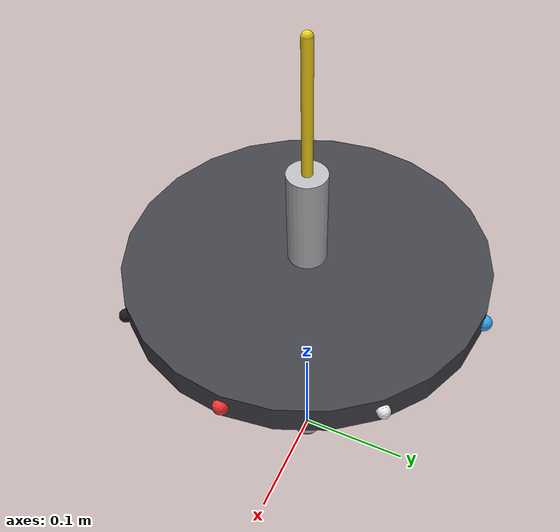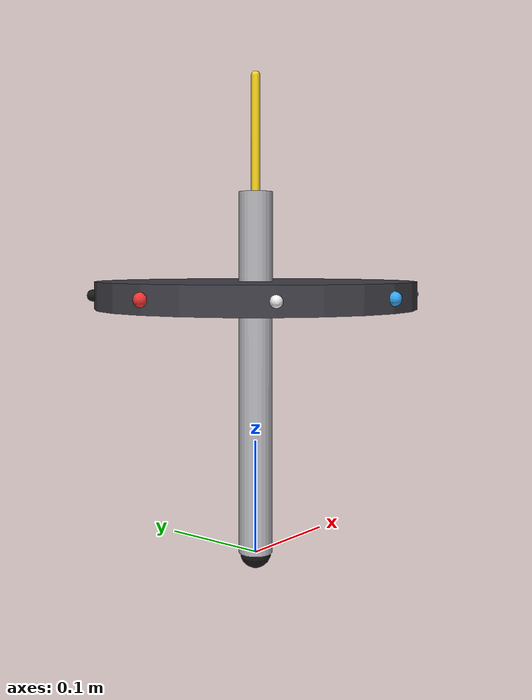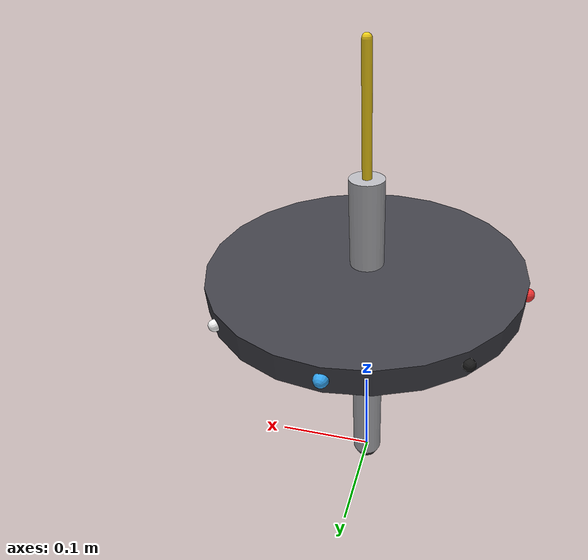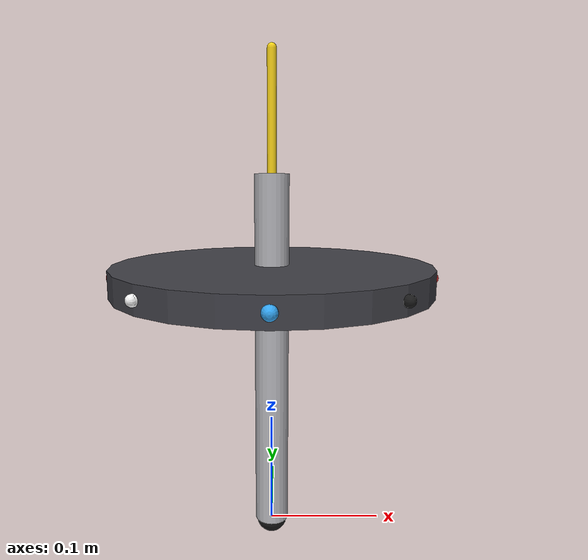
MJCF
<mujoco model="gyroscopic_rotor_fixed_pivot">
  <compiler angle="degree"/>
  <option gravity="0 0 -9.81" timestep="0.001" integrator="RK4"/>

  <asset>
    <material name="metal" rgba="0.72 0.72 0.74 1"/>
  </asset>

  <worldbody>
    <light pos="1.2 -1.0 2.0" dir="-1 1 -1" diffuse="0.9 0.9 0.9"/>
    <camera name="cam_oblique" pos="1.4 -1.1 1.0" xyaxes="0.62 0.78 0.00 -0.30 0.24 0.92"/>
    <camera name="cam_top" pos="0 0 2.8" xyaxes="1 0 0 0 1 0"/>

    <body name="rotor" pos="0 0 0">
      <joint name="pivot" type="ball" damping="0"/>

      <inertial pos="0 0 0.20" mass="1.0" diaginertia="0.02 0.02 0.01"/>

      <!-- Visual-only geometry -->
      <geom name="pivot_tip" type="sphere" pos="0 0 0" size="0.014" mass="0" rgba="0.1 0.1 0.1 1"/>
      <geom name="shaft" type="cylinder" pos="0 0 0.16" size="0.015 0.16" mass="0" material="metal"/>
      <geom name="rotor_disk" type="cylinder" pos="0 0 0.23" size="0.14 0.012" mass="0" rgba="0.25 0.25 0.28 1"/>
      <geom name="axis_marker" type="capsule" fromto="0 0 0 0 0 0.42" size="0.004" mass="0" rgba="1.0 0.85 0.1 1"/>

      <geom name="stripe_x" type="capsule" fromto="-0.14 0 0.23 0.14 0 0.23" size="0.006" mass="0" rgba="0.95 0.2 0.2 1"/>
      <geom name="stripe_y" type="capsule" fromto="0 -0.14 0.23 0 0.14 0.23" size="0.006" mass="0" rgba="0.2 0.65 0.95 1"/>
      <geom name="stripe_d1" type="capsule" fromto="-0.10 -0.10 0.23 0.10 0.10 0.23" size="0.005" mass="0" rgba="0.95 0.95 0.95 1"/>
      <geom name="stripe_d2" type="capsule" fromto="-0.10 0.10 0.23 0.10 -0.10 0.23" size="0.005" mass="0" rgba="0.1 0.1 0.1 1"/>
    </body>
  </worldbody>
</mujoco>
